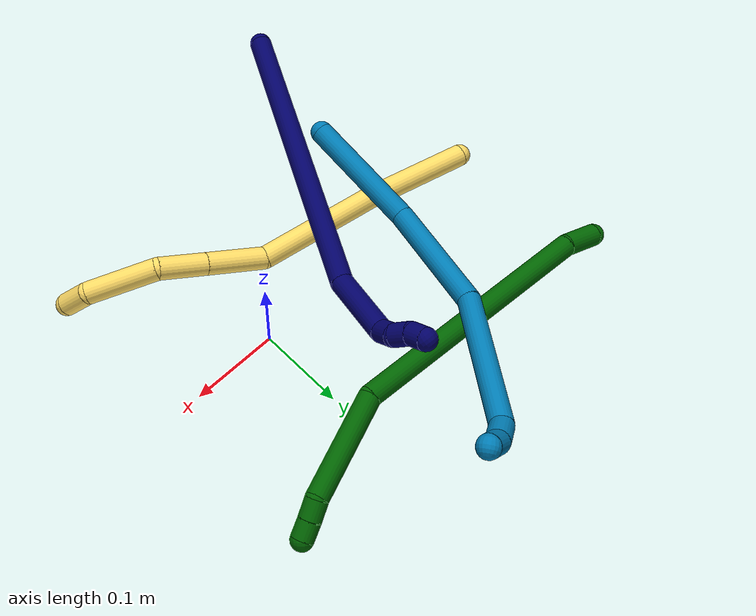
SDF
<sdf version="1.7">
 <world name="default">
  <model name="5">
   <static>0</static>
   <link name="5">
    <collision name="collision-cylinder-e_1_1_4">
     <pose>0.022314 -0.021101 0.054432 0.369815 0.365089 0.069029</pose>
     <geometry><cylinder><radius>0.0125</radius><length>0.124997</length></cylinder></geometry>
     <surface>
      <friction><ode><mu>1.16</mu><mu2>1.16</mu2><slip1>0</slip1><slip2>0</slip2></ode></friction>
      <contact><ode><kp>1e+06</kp><kd>1</kd><max_vel>0</max_vel><min_depth>0.001</min_depth></ode></contact>
     </surface>
    </collision>
    <visual name="visual-cylinder-e_1_1_4">
     <pose>0.022314 -0.021101 0.054432 0.369815 0.365089 0.069029</pose>
     <geometry><cylinder><radius>0.0125</radius><length>0.124997</length></cylinder></geometry>
     <material><ambient>1 0.858824 0.4 1</ambient></material>
    </visual>
    <collision name="collision-cylinder-e_2_4_5">
     <pose>0.073654 -0.057054 0.171053 0.234445 0.426164 0.050949</pose>
     <geometry><cylinder><radius>0.0125</radius><length>0.140435</length></cylinder></geometry>
     <surface>
      <friction><ode><mu>1.16</mu><mu2>1.16</mu2><slip1>0</slip1><slip2>0</slip2></ode></friction>
      <contact><ode><kp>1e+06</kp><kd>1</kd><max_vel>0</max_vel><min_depth>0.001</min_depth></ode></contact>
     </surface>
    </collision>
    <visual name="visual-cylinder-e_2_4_5">
     <pose>0.073654 -0.057054 0.171053 0.234445 0.426164 0.050949</pose>
     <geometry><cylinder><radius>0.0125</radius><length>0.140435</length></cylinder></geometry>
     <material><ambient>1 0.858824 0.4 1</ambient></material>
    </visual>
    <collision name="collision-cylinder-e_3_5_6">
     <pose>0.119127 -0.090342 0.255636 0.688724 0.515792 0.188642</pose>
     <geometry><cylinder><radius>0.0125</radius><length>0.06669</length></cylinder></geometry>
     <surface>
      <friction><ode><mu>1.16</mu><mu2>1.16</mu2><slip1>0</slip1><slip2>0</slip2></ode></friction>
      <contact><ode><kp>1e+06</kp><kd>1</kd><max_vel>0</max_vel><min_depth>0.001</min_depth></ode></contact>
     </surface>
    </collision>
    <visual name="visual-cylinder-e_3_5_6">
     <pose>0.119127 -0.090342 0.255636 0.688724 0.515792 0.188642</pose>
     <geometry><cylinder><radius>0.0125</radius><length>0.06669</length></cylinder></geometry>
     <material><ambient>1 0.858824 0.4 1</ambient></material>
    </visual>
    <collision name="collision-cylinder-e_4_6_7">
     <pose>0.148936 -0.123478 0.295875 0.68908 0.52403 0.191884</pose>
     <geometry><cylinder><radius>0.0125</radius><length>0.053407</length></cylinder></geometry>
     <surface>
      <friction><ode><mu>1.16</mu><mu2>1.16</mu2><slip1>0</slip1><slip2>0</slip2></ode></friction>
      <contact><ode><kp>1e+06</kp><kd>1</kd><max_vel>0</max_vel><min_depth>0.001</min_depth></ode></contact>
     </surface>
    </collision>
    <visual name="visual-cylinder-e_4_6_7">
     <pose>0.148936 -0.123478 0.295875 0.68908 0.52403 0.191884</pose>
     <geometry><cylinder><radius>0.0125</radius><length>0.053407</length></cylinder></geometry>
     <material><ambient>1 0.858824 0.4 1</ambient></material>
    </visual>
    <collision name="collision-cylinder-e_5_7_8">
     <pose>0.191706 -0.142436 0.340682 0.156635 0.82264 0.068438</pose>
     <geometry><cylinder><radius>0.0125</radius><length>0.080248</length></cylinder></geometry>
     <surface>
      <friction><ode><mu>1.16</mu><mu2>1.16</mu2><slip1>0</slip1><slip2>0</slip2></ode></friction>
      <contact><ode><kp>1e+06</kp><kd>1</kd><max_vel>0</max_vel><min_depth>0.001</min_depth></ode></contact>
     </surface>
    </collision>
    <visual name="visual-cylinder-e_5_7_8">
     <pose>0.191706 -0.142436 0.340682 0.156635 0.82264 0.068438</pose>
     <geometry><cylinder><radius>0.0125</radius><length>0.080248</length></cylinder></geometry>
     <material><ambient>1 0.858824 0.4 1</ambient></material>
    </visual>
    <collision name="collision-cylinder-e_6_8_2">
     <pose>0.235643 -0.141155 0.374788 -0.659491 1.01417 -0.37577</pose>
     <geometry><cylinder><radius>0.0125</radius><length>0.034224</length></cylinder></geometry>
     <surface>
      <friction><ode><mu>1.16</mu><mu2>1.16</mu2><slip1>0</slip1><slip2>0</slip2></ode></friction>
      <contact><ode><kp>1e+06</kp><kd>1</kd><max_vel>0</max_vel><min_depth>0.001</min_depth></ode></contact>
     </surface>
    </collision>
    <visual name="visual-cylinder-e_6_8_2">
     <pose>0.235643 -0.141155 0.374788 -0.659491 1.01417 -0.37577</pose>
     <geometry><cylinder><radius>0.0125</radius><length>0.034224</length></cylinder></geometry>
     <material><ambient>1 0.858824 0.4 1</ambient></material>
    </visual>
    <collision name="collision-sphere-2">
     <pose>0.250172 -0.135616 0.381933 0 -0 0</pose>
     <geometry><sphere><radius>0.0125</radius></sphere></geometry>
     <surface>
      <friction><ode><mu>1.16</mu><mu2>1.16</mu2><slip1>0</slip1><slip2>0</slip2></ode></friction>
      <contact><ode><kp>1e+06</kp><kd>1</kd><max_vel>0</max_vel><min_depth>0.001</min_depth></ode></contact>
     </surface>
    </collision>
    <visual name="visual-sphere-2">
     <pose>0.250172 -0.135616 0.381933 0 -0 0</pose>
     <geometry><sphere><radius>0.0125</radius></sphere></geometry>
     <material><ambient>1 0.858824 0.4 1</ambient></material>
    </visual>
    <collision name="collision-sphere-4">
     <pose>0.044628 -0.042201 0.108865 0 -0 0</pose>
     <geometry><sphere><radius>0.0125</radius></sphere></geometry>
     <surface>
      <friction><ode><mu>1.16</mu><mu2>1.16</mu2><slip1>0</slip1><slip2>0</slip2></ode></friction>
      <contact><ode><kp>1e+06</kp><kd>1</kd><max_vel>0</max_vel><min_depth>0.001</min_depth></ode></contact>
     </surface>
    </collision>
    <visual name="visual-sphere-4">
     <pose>0.044628 -0.042201 0.108865 0 -0 0</pose>
     <geometry><sphere><radius>0.0125</radius></sphere></geometry>
     <material><ambient>1 0.858824 0.4 1</ambient></material>
    </visual>
    <collision name="collision-sphere-1">
     <geometry><sphere><radius>0.0125</radius></sphere></geometry>
     <surface>
      <friction><ode><mu>1.16</mu><mu2>1.16</mu2><slip1>0</slip1><slip2>0</slip2></ode></friction>
      <contact><ode><kp>1e+06</kp><kd>1</kd><max_vel>0</max_vel><min_depth>0.001</min_depth></ode></contact>
     </surface>
    </collision>
    <visual name="visual-sphere-1">
     <geometry><sphere><radius>0.0125</radius></sphere></geometry>
     <material><ambient>1 0.858824 0.4 1</ambient></material>
    </visual>
    <collision name="collision-sphere-8">
     <pose>0.221114 -0.146694 0.367643 0 -0 0</pose>
     <geometry><sphere><radius>0.0125</radius></sphere></geometry>
     <surface>
      <friction><ode><mu>1.16</mu><mu2>1.16</mu2><slip1>0</slip1><slip2>0</slip2></ode></friction>
      <contact><ode><kp>1e+06</kp><kd>1</kd><max_vel>0</max_vel><min_depth>0.001</min_depth></ode></contact>
     </surface>
    </collision>
    <visual name="visual-sphere-8">
     <pose>0.221114 -0.146694 0.367643 0 -0 0</pose>
     <geometry><sphere><radius>0.0125</radius></sphere></geometry>
     <material><ambient>1 0.858824 0.4 1</ambient></material>
    </visual>
    <collision name="collision-sphere-5">
     <pose>0.102681 -0.071907 0.233241 0 -0 0</pose>
     <geometry><sphere><radius>0.0125</radius></sphere></geometry>
     <surface>
      <friction><ode><mu>1.16</mu><mu2>1.16</mu2><slip1>0</slip1><slip2>0</slip2></ode></friction>
      <contact><ode><kp>1e+06</kp><kd>1</kd><max_vel>0</max_vel><min_depth>0.001</min_depth></ode></contact>
     </surface>
    </collision>
    <visual name="visual-sphere-5">
     <pose>0.102681 -0.071907 0.233241 0 -0 0</pose>
     <geometry><sphere><radius>0.0125</radius></sphere></geometry>
     <material><ambient>1 0.858824 0.4 1</ambient></material>
    </visual>
    <collision name="collision-sphere-6">
     <pose>0.135574 -0.108778 0.278031 0 -0 0</pose>
     <geometry><sphere><radius>0.0125</radius></sphere></geometry>
     <surface>
      <friction><ode><mu>1.16</mu><mu2>1.16</mu2><slip1>0</slip1><slip2>0</slip2></ode></friction>
      <contact><ode><kp>1e+06</kp><kd>1</kd><max_vel>0</max_vel><min_depth>0.001</min_depth></ode></contact>
     </surface>
    </collision>
    <visual name="visual-sphere-6">
     <pose>0.135574 -0.108778 0.278031 0 -0 0</pose>
     <geometry><sphere><radius>0.0125</radius></sphere></geometry>
     <material><ambient>1 0.858824 0.4 1</ambient></material>
    </visual>
    <collision name="collision-sphere-7">
     <pose>0.162297 -0.138178 0.31372 0 -0 0</pose>
     <geometry><sphere><radius>0.0125</radius></sphere></geometry>
     <surface>
      <friction><ode><mu>1.16</mu><mu2>1.16</mu2><slip1>0</slip1><slip2>0</slip2></ode></friction>
      <contact><ode><kp>1e+06</kp><kd>1</kd><max_vel>0</max_vel><min_depth>0.001</min_depth></ode></contact>
     </surface>
    </collision>
    <visual name="visual-sphere-7">
     <pose>0.162297 -0.138178 0.31372 0 -0 0</pose>
     <geometry><sphere><radius>0.0125</radius></sphere></geometry>
     <material><ambient>1 0.858824 0.4 1</ambient></material>
    </visual>
    <inertial>
     <pose>0.10496 -0.079061 0.207683 0 -0 0</pose>
     <mass>0.5</mass>
     <inertia>
      <ixx>0.00049</ixx>
      <ixy>0</ixy>
      <ixz>0</ixz>
      <iyy>0.000492</iyy>
      <iyz>0</iyz>
      <izz>-5.3e-05</izz>
     </inertia>
    </inertial>
   </link>
   <pose>-0.311629 -0.013539 0.02881 -1.6405 0.4193 -1.29907</pose>
  </model>
  <model name="6">
   <static>0</static>
   <link name="6">
    <collision name="collision-cylinder-e_1_1_4">
     <pose>0.003434 -0.006276 -0.019703 2.83321 0.16456 0.975624</pose>
     <geometry><cylinder><radius>0.0125</radius><length>0.041924</length></cylinder></geometry>
     <surface>
      <friction><ode><mu>1.16</mu><mu2>1.16</mu2><slip1>0</slip1><slip2>0</slip2></ode></friction>
      <contact><ode><kp>1e+06</kp><kd>1</kd><max_vel>0</max_vel><min_depth>0.001</min_depth></ode></contact>
     </surface>
    </collision>
    <visual name="visual-cylinder-e_1_1_4">
     <pose>0.003434 -0.006276 -0.019703 2.83321 0.16456 0.975624</pose>
     <geometry><cylinder><radius>0.0125</radius><length>0.041924</length></cylinder></geometry>
     <material><ambient>0 0.392157 0.003922 1</ambient></material>
    </visual>
    <collision name="collision-cylinder-e_2_4_5">
     <pose>0.068405 -0.045663 -0.170341 2.89391 0.427535 2.10032</pose>
     <geometry><cylinder><radius>0.0125</radius><length>0.29683</length></cylinder></geometry>
     <surface>
      <friction><ode><mu>1.16</mu><mu2>1.16</mu2><slip1>0</slip1><slip2>0</slip2></ode></friction>
      <contact><ode><kp>1e+06</kp><kd>1</kd><max_vel>0</max_vel><min_depth>0.001</min_depth></ode></contact>
     </surface>
    </collision>
    <visual name="visual-cylinder-e_2_4_5">
     <pose>0.068405 -0.045663 -0.170341 2.89391 0.427535 2.10032</pose>
     <geometry><cylinder><radius>0.0125</radius><length>0.29683</length></cylinder></geometry>
     <material><ambient>0 0.392157 0.003922 1</ambient></material>
    </visual>
    <collision name="collision-cylinder-e_3_5_6">
     <pose>0.17348 -0.094524 -0.33811 2.7375 0.826956 2.26803</pose>
     <geometry><cylinder><radius>0.0125</radius><length>0.118328</length></cylinder></geometry>
     <surface>
      <friction><ode><mu>1.16</mu><mu2>1.16</mu2><slip1>0</slip1><slip2>0</slip2></ode></friction>
      <contact><ode><kp>1e+06</kp><kd>1</kd><max_vel>0</max_vel><min_depth>0.001</min_depth></ode></contact>
     </surface>
    </collision>
    <visual name="visual-cylinder-e_3_5_6">
     <pose>0.17348 -0.094524 -0.33811 2.7375 0.826956 2.26803</pose>
     <geometry><cylinder><radius>0.0125</radius><length>0.118328</length></cylinder></geometry>
     <material><ambient>0 0.392157 0.003922 1</ambient></material>
    </visual>
    <collision name="collision-cylinder-e_4_6_7">
     <pose>0.227031 -0.110021 -0.379717 -3.08834 1.12553 -3.0572</pose>
     <geometry><cylinder><radius>0.0125</radius><length>0.022193</length></cylinder></geometry>
     <surface>
      <friction><ode><mu>1.16</mu><mu2>1.16</mu2><slip1>0</slip1><slip2>0</slip2></ode></friction>
      <contact><ode><kp>1e+06</kp><kd>1</kd><max_vel>0</max_vel><min_depth>0.001</min_depth></ode></contact>
     </surface>
    </collision>
    <visual name="visual-cylinder-e_4_6_7">
     <pose>0.227031 -0.110021 -0.379717 -3.08834 1.12553 -3.0572</pose>
     <geometry><cylinder><radius>0.0125</radius><length>0.022193</length></cylinder></geometry>
     <material><ambient>0 0.392157 0.003922 1</ambient></material>
    </visual>
    <collision name="collision-cylinder-e_5_7_2">
     <pose>0.246215 -0.109281 -0.389293 -3.04079 1.08622 -2.97486</pose>
     <geometry><cylinder><radius>0.0125</radius><length>0.020725</length></cylinder></geometry>
     <surface>
      <friction><ode><mu>1.16</mu><mu2>1.16</mu2><slip1>0</slip1><slip2>0</slip2></ode></friction>
      <contact><ode><kp>1e+06</kp><kd>1</kd><max_vel>0</max_vel><min_depth>0.001</min_depth></ode></contact>
     </surface>
    </collision>
    <visual name="visual-cylinder-e_5_7_2">
     <pose>0.246215 -0.109281 -0.389293 -3.04079 1.08622 -2.97486</pose>
     <geometry><cylinder><radius>0.0125</radius><length>0.020725</length></cylinder></geometry>
     <material><ambient>0 0.392157 0.003922 1</ambient></material>
    </visual>
    <collision name="collision-sphere-2">
     <pose>0.255385 -0.108795 -0.394095 0 -0 0</pose>
     <geometry><sphere><radius>0.0125</radius></sphere></geometry>
     <surface>
      <friction><ode><mu>1.16</mu><mu2>1.16</mu2><slip1>0</slip1><slip2>0</slip2></ode></friction>
      <contact><ode><kp>1e+06</kp><kd>1</kd><max_vel>0</max_vel><min_depth>0.001</min_depth></ode></contact>
     </surface>
    </collision>
    <visual name="visual-sphere-2">
     <pose>0.255385 -0.108795 -0.394095 0 -0 0</pose>
     <geometry><sphere><radius>0.0125</radius></sphere></geometry>
     <material><ambient>0 0.392157 0.003922 1</ambient></material>
    </visual>
    <collision name="collision-sphere-7">
     <pose>0.237046 -0.109767 -0.38449 0 -0 0</pose>
     <geometry><sphere><radius>0.0125</radius></sphere></geometry>
     <surface>
      <friction><ode><mu>1.16</mu><mu2>1.16</mu2><slip1>0</slip1><slip2>0</slip2></ode></friction>
      <contact><ode><kp>1e+06</kp><kd>1</kd><max_vel>0</max_vel><min_depth>0.001</min_depth></ode></contact>
     </surface>
    </collision>
    <visual name="visual-sphere-7">
     <pose>0.237046 -0.109767 -0.38449 0 -0 0</pose>
     <geometry><sphere><radius>0.0125</radius></sphere></geometry>
     <material><ambient>0 0.392157 0.003922 1</ambient></material>
    </visual>
    <collision name="collision-sphere-6">
     <pose>0.217017 -0.110276 -0.374945 0 -0 0</pose>
     <geometry><sphere><radius>0.0125</radius></sphere></geometry>
     <surface>
      <friction><ode><mu>1.16</mu><mu2>1.16</mu2><slip1>0</slip1><slip2>0</slip2></ode></friction>
      <contact><ode><kp>1e+06</kp><kd>1</kd><max_vel>0</max_vel><min_depth>0.001</min_depth></ode></contact>
     </surface>
    </collision>
    <visual name="visual-sphere-6">
     <pose>0.217017 -0.110276 -0.374945 0 -0 0</pose>
     <geometry><sphere><radius>0.0125</radius></sphere></geometry>
     <material><ambient>0 0.392157 0.003922 1</ambient></material>
    </visual>
    <collision name="collision-sphere-5">
     <pose>0.129942 -0.078773 -0.301276 0 -0 0</pose>
     <geometry><sphere><radius>0.0125</radius></sphere></geometry>
     <surface>
      <friction><ode><mu>1.16</mu><mu2>1.16</mu2><slip1>0</slip1><slip2>0</slip2></ode></friction>
      <contact><ode><kp>1e+06</kp><kd>1</kd><max_vel>0</max_vel><min_depth>0.001</min_depth></ode></contact>
     </surface>
    </collision>
    <visual name="visual-sphere-5">
     <pose>0.129942 -0.078773 -0.301276 0 -0 0</pose>
     <geometry><sphere><radius>0.0125</radius></sphere></geometry>
     <material><ambient>0 0.392157 0.003922 1</ambient></material>
    </visual>
    <collision name="collision-sphere-1">
     <geometry><sphere><radius>0.0125</radius></sphere></geometry>
     <surface>
      <friction><ode><mu>1.16</mu><mu2>1.16</mu2><slip1>0</slip1><slip2>0</slip2></ode></friction>
      <contact><ode><kp>1e+06</kp><kd>1</kd><max_vel>0</max_vel><min_depth>0.001</min_depth></ode></contact>
     </surface>
    </collision>
    <visual name="visual-sphere-1">
     <geometry><sphere><radius>0.0125</radius></sphere></geometry>
     <material><ambient>0 0.392157 0.003922 1</ambient></material>
    </visual>
    <collision name="collision-sphere-4">
     <pose>0.006868 -0.012553 -0.039406 0 -0 0</pose>
     <geometry><sphere><radius>0.0125</radius></sphere></geometry>
     <surface>
      <friction><ode><mu>1.16</mu><mu2>1.16</mu2><slip1>0</slip1><slip2>0</slip2></ode></friction>
      <contact><ode><kp>1e+06</kp><kd>1</kd><max_vel>0</max_vel><min_depth>0.001</min_depth></ode></contact>
     </surface>
    </collision>
    <visual name="visual-sphere-4">
     <pose>0.006868 -0.012553 -0.039406 0 -0 0</pose>
     <geometry><sphere><radius>0.0125</radius></sphere></geometry>
     <material><ambient>0 0.392157 0.003922 1</ambient></material>
    </visual>
    <inertial>
     <pose>0.102235 -0.059417 -0.215783 0 -0 0</pose>
     <mass>0.5</mass>
     <inertia>
      <ixx>0.000755</ixx>
      <ixy>0</ixy>
      <ixz>0</ixz>
      <iyy>0.003173</iyy>
      <iyz>0</iyz>
      <izz>-0.00052</izz>
     </inertia>
    </inertial>
   </link>
   <pose>-0.349409 0.159865 0.011494 -1.75501 0.611703 0.934999</pose>
  </model>
  <model name="7">
   <static>0</static>
   <link name="7">
    <collision name="collision-cylinder-e_1_1_4">
     <pose>0.093923 0.047242 -0.142399 -2.82126 0.559334 -2.1168</pose>
     <geometry><cylinder><radius>0.0125</radius><length>0.35401</length></cylinder></geometry>
     <surface>
      <friction><ode><mu>1.16</mu><mu2>1.16</mu2><slip1>0</slip1><slip2>0</slip2></ode></friction>
      <contact><ode><kp>1e+06</kp><kd>1</kd><max_vel>0</max_vel><min_depth>0.001</min_depth></ode></contact>
     </surface>
    </collision>
    <visual name="visual-cylinder-e_1_1_4">
     <pose>0.093923 0.047242 -0.142399 -2.82126 0.559334 -2.1168</pose>
     <geometry><cylinder><radius>0.0125</radius><length>0.35401</length></cylinder></geometry>
     <material><ambient>0.003922 0 0.403922 1</ambient></material>
    </visual>
    <collision name="collision-cylinder-e_2_4_5">
     <pose>0.202519 0.115822 -0.315698 -2.53723 0.372506 -1.08743</pose>
     <geometry><cylinder><radius>0.0125</radius><length>0.080634</length></cylinder></geometry>
     <surface>
      <friction><ode><mu>1.16</mu><mu2>1.16</mu2><slip1>0</slip1><slip2>0</slip2></ode></friction>
      <contact><ode><kp>1e+06</kp><kd>1</kd><max_vel>0</max_vel><min_depth>0.001</min_depth></ode></contact>
     </surface>
    </collision>
    <visual name="visual-cylinder-e_2_4_5">
     <pose>0.202519 0.115822 -0.315698 -2.53723 0.372506 -1.08743</pose>
     <geometry><cylinder><radius>0.0125</radius><length>0.080634</length></cylinder></geometry>
     <material><ambient>0.003922 0 0.403922 1</ambient></material>
    </visual>
    <collision name="collision-cylinder-e_3_5_6">
     <pose>0.220681 0.147362 -0.351242 -1.99801 0.30181 -0.464096</pose>
     <geometry><cylinder><radius>0.0125</radius><length>0.023478</length></cylinder></geometry>
     <surface>
      <friction><ode><mu>1.16</mu><mu2>1.16</mu2><slip1>0</slip1><slip2>0</slip2></ode></friction>
      <contact><ode><kp>1e+06</kp><kd>1</kd><max_vel>0</max_vel><min_depth>0.001</min_depth></ode></contact>
     </surface>
    </collision>
    <visual name="visual-cylinder-e_3_5_6">
     <pose>0.220681 0.147362 -0.351242 -1.99801 0.30181 -0.464096</pose>
     <geometry><cylinder><radius>0.0125</radius><length>0.023478</length></cylinder></geometry>
     <material><ambient>0.003922 0 0.403922 1</ambient></material>
    </visual>
    <collision name="collision-cylinder-e_4_6_7">
     <pose>0.222669 0.1676 -0.359574 -1.9229 -0.139482 0.199506</pose>
     <geometry><cylinder><radius>0.0125</radius><length>0.021598</length></cylinder></geometry>
     <surface>
      <friction><ode><mu>1.16</mu><mu2>1.16</mu2><slip1>0</slip1><slip2>0</slip2></ode></friction>
      <contact><ode><kp>1e+06</kp><kd>1</kd><max_vel>0</max_vel><min_depth>0.001</min_depth></ode></contact>
     </surface>
    </collision>
    <visual name="visual-cylinder-e_4_6_7">
     <pose>0.222669 0.1676 -0.359574 -1.9229 -0.139482 0.199506</pose>
     <geometry><cylinder><radius>0.0125</radius><length>0.021598</length></cylinder></geometry>
     <material><ambient>0.003922 0 0.403922 1</ambient></material>
    </visual>
    <collision name="collision-cylinder-e_5_7_2">
     <pose>0.222481 0.185801 -0.369134 -2.19441 0.129803 -0.252287</pose>
     <geometry><cylinder><radius>0.0125</radius><length>0.020281</length></cylinder></geometry>
     <surface>
      <friction><ode><mu>1.16</mu><mu2>1.16</mu2><slip1>0</slip1><slip2>0</slip2></ode></friction>
      <contact><ode><kp>1e+06</kp><kd>1</kd><max_vel>0</max_vel><min_depth>0.001</min_depth></ode></contact>
     </surface>
    </collision>
    <visual name="visual-cylinder-e_5_7_2">
     <pose>0.222481 0.185801 -0.369134 -2.19441 0.129803 -0.252287</pose>
     <geometry><cylinder><radius>0.0125</radius><length>0.020281</length></cylinder></geometry>
     <material><ambient>0.003922 0 0.403922 1</ambient></material>
    </visual>
    <collision name="collision-sphere-2">
     <pose>0.223793 0.193964 -0.375006 0 -0 0</pose>
     <geometry><sphere><radius>0.0125</radius></sphere></geometry>
     <surface>
      <friction><ode><mu>1.16</mu><mu2>1.16</mu2><slip1>0</slip1><slip2>0</slip2></ode></friction>
      <contact><ode><kp>1e+06</kp><kd>1</kd><max_vel>0</max_vel><min_depth>0.001</min_depth></ode></contact>
     </surface>
    </collision>
    <visual name="visual-sphere-2">
     <pose>0.223793 0.193964 -0.375006 0 -0 0</pose>
     <geometry><sphere><radius>0.0125</radius></sphere></geometry>
     <material><ambient>0.003922 0 0.403922 1</ambient></material>
    </visual>
    <collision name="collision-sphere-7">
     <pose>0.221168 0.177638 -0.363262 0 -0 0</pose>
     <geometry><sphere><radius>0.0125</radius></sphere></geometry>
     <surface>
      <friction><ode><mu>1.16</mu><mu2>1.16</mu2><slip1>0</slip1><slip2>0</slip2></ode></friction>
      <contact><ode><kp>1e+06</kp><kd>1</kd><max_vel>0</max_vel><min_depth>0.001</min_depth></ode></contact>
     </surface>
    </collision>
    <visual name="visual-sphere-7">
     <pose>0.221168 0.177638 -0.363262 0 -0 0</pose>
     <geometry><sphere><radius>0.0125</radius></sphere></geometry>
     <material><ambient>0.003922 0 0.403922 1</ambient></material>
    </visual>
    <collision name="collision-sphere-6">
     <pose>0.224171 0.157563 -0.355886 0 -0 0</pose>
     <geometry><sphere><radius>0.0125</radius></sphere></geometry>
     <surface>
      <friction><ode><mu>1.16</mu><mu2>1.16</mu2><slip1>0</slip1><slip2>0</slip2></ode></friction>
      <contact><ode><kp>1e+06</kp><kd>1</kd><max_vel>0</max_vel><min_depth>0.001</min_depth></ode></contact>
     </surface>
    </collision>
    <visual name="visual-sphere-6">
     <pose>0.224171 0.157563 -0.355886 0 -0 0</pose>
     <geometry><sphere><radius>0.0125</radius></sphere></geometry>
     <material><ambient>0.003922 0 0.403922 1</ambient></material>
    </visual>
    <collision name="collision-sphere-5">
     <pose>0.217192 0.137161 -0.346598 0 -0 0</pose>
     <geometry><sphere><radius>0.0125</radius></sphere></geometry>
     <surface>
      <friction><ode><mu>1.16</mu><mu2>1.16</mu2><slip1>0</slip1><slip2>0</slip2></ode></friction>
      <contact><ode><kp>1e+06</kp><kd>1</kd><max_vel>0</max_vel><min_depth>0.001</min_depth></ode></contact>
     </surface>
    </collision>
    <visual name="visual-sphere-5">
     <pose>0.217192 0.137161 -0.346598 0 -0 0</pose>
     <geometry><sphere><radius>0.0125</radius></sphere></geometry>
     <material><ambient>0.003922 0 0.403922 1</ambient></material>
    </visual>
    <collision name="collision-sphere-1">
     <geometry><sphere><radius>0.0125</radius></sphere></geometry>
     <surface>
      <friction><ode><mu>1.16</mu><mu2>1.16</mu2><slip1>0</slip1><slip2>0</slip2></ode></friction>
      <contact><ode><kp>1e+06</kp><kd>1</kd><max_vel>0</max_vel><min_depth>0.001</min_depth></ode></contact>
     </surface>
    </collision>
    <visual name="visual-sphere-1">
     <geometry><sphere><radius>0.0125</radius></sphere></geometry>
     <material><ambient>0.003922 0 0.403922 1</ambient></material>
    </visual>
    <collision name="collision-sphere-4">
     <pose>0.187845 0.094484 -0.284798 0 -0 0</pose>
     <geometry><sphere><radius>0.0125</radius></sphere></geometry>
     <surface>
      <friction><ode><mu>1.16</mu><mu2>1.16</mu2><slip1>0</slip1><slip2>0</slip2></ode></friction>
      <contact><ode><kp>1e+06</kp><kd>1</kd><max_vel>0</max_vel><min_depth>0.001</min_depth></ode></contact>
     </surface>
    </collision>
    <visual name="visual-sphere-4">
     <pose>0.187845 0.094484 -0.284798 0 -0 0</pose>
     <geometry><sphere><radius>0.0125</radius></sphere></geometry>
     <material><ambient>0.003922 0 0.403922 1</ambient></material>
    </visual>
    <inertial>
     <pose>0.128164 0.073822 -0.198731 0 -0 0</pose>
     <mass>0.5</mass>
     <inertia>
      <ixx>-0.004318</ixx>
      <ixy>0</ixy>
      <ixz>0</ixz>
      <iyy>-0.000365</iyy>
      <iyz>0</iyz>
      <izz>-0.003036</izz>
     </inertia>
    </inertial>
   </link>
   <pose>-0.242914 -0.27862 0.058413 1.10199 -0.299922 0.085955</pose>
  </model>
  <model name="9">
   <static>0</static>
   <link name="9">
    <collision name="collision-cylinder-e_1_1_4">
     <pose>0.036319 0.040161 0.042809 -0.753496 0.554088 -0.224068</pose>
     <geometry><cylinder><radius>0.0125</radius><length>0.138051</length></cylinder></geometry>
     <surface>
      <friction><ode><mu>1.16</mu><mu2>1.16</mu2><slip1>0</slip1><slip2>0</slip2></ode></friction>
      <contact><ode><kp>1e+06</kp><kd>1</kd><max_vel>0</max_vel><min_depth>0.001</min_depth></ode></contact>
     </surface>
    </collision>
    <visual name="visual-cylinder-e_1_1_4">
     <pose>0.036319 0.040161 0.042809 -0.753496 0.554088 -0.224068</pose>
     <geometry><cylinder><radius>0.0125</radius><length>0.138051</length></cylinder></geometry>
     <material><ambient>0 0.490196 0.709804 1</ambient></material>
    </visual>
    <collision name="collision-cylinder-e_2_4_5">
     <pose>0.087986 0.127909 0.132241 -0.795629 0.226422 -0.095483</pose>
     <geometry><cylinder><radius>0.0125</radius><length>0.136731</length></cylinder></geometry>
     <surface>
      <friction><ode><mu>1.16</mu><mu2>1.16</mu2><slip1>0</slip1><slip2>0</slip2></ode></friction>
      <contact><ode><kp>1e+06</kp><kd>1</kd><max_vel>0</max_vel><min_depth>0.001</min_depth></ode></contact>
     </surface>
    </collision>
    <visual name="visual-cylinder-e_2_4_5">
     <pose>0.087986 0.127909 0.132241 -0.795629 0.226422 -0.095483</pose>
     <geometry><cylinder><radius>0.0125</radius><length>0.136731</length></cylinder></geometry>
     <material><ambient>0 0.490196 0.709804 1</ambient></material>
    </visual>
    <collision name="collision-cylinder-e_3_5_6">
     <pose>0.093203 0.223623 0.246681 -0.617177 -0.121225 0.038686</pose>
     <geometry><cylinder><radius>0.0125</radius><length>0.167546</length></cylinder></geometry>
     <surface>
      <friction><ode><mu>1.16</mu><mu2>1.16</mu2><slip1>0</slip1><slip2>0</slip2></ode></friction>
      <contact><ode><kp>1e+06</kp><kd>1</kd><max_vel>0</max_vel><min_depth>0.001</min_depth></ode></contact>
     </surface>
    </collision>
    <visual name="visual-cylinder-e_3_5_6">
     <pose>0.093203 0.223623 0.246681 -0.617177 -0.121225 0.038686</pose>
     <geometry><cylinder><radius>0.0125</radius><length>0.167546</length></cylinder></geometry>
     <material><ambient>0 0.490196 0.709804 1</ambient></material>
    </visual>
    <collision name="collision-cylinder-e_4_6_7">
     <pose>0.074205 0.279711 0.324119 -0.691252 -0.617427 0.228664</pose>
     <geometry><cylinder><radius>0.0125</radius><length>0.030631</length></cylinder></geometry>
     <surface>
      <friction><ode><mu>1.16</mu><mu2>1.16</mu2><slip1>0</slip1><slip2>0</slip2></ode></friction>
      <contact><ode><kp>1e+06</kp><kd>1</kd><max_vel>0</max_vel><min_depth>0.001</min_depth></ode></contact>
     </surface>
    </collision>
    <visual name="visual-cylinder-e_4_6_7">
     <pose>0.074205 0.279711 0.324119 -0.691252 -0.617427 0.228664</pose>
     <geometry><cylinder><radius>0.0125</radius><length>0.030631</length></cylinder></geometry>
     <material><ambient>0 0.490196 0.709804 1</ambient></material>
    </visual>
    <collision name="collision-cylinder-e_5_7_2">
     <pose>0.054246 0.293941 0.338262 -0.945911 -0.962203 0.522028</pose>
     <geometry><cylinder><radius>0.0125</radius><length>0.02704</length></cylinder></geometry>
     <surface>
      <friction><ode><mu>1.16</mu><mu2>1.16</mu2><slip1>0</slip1><slip2>0</slip2></ode></friction>
      <contact><ode><kp>1e+06</kp><kd>1</kd><max_vel>0</max_vel><min_depth>0.001</min_depth></ode></contact>
     </surface>
    </collision>
    <visual name="visual-cylinder-e_5_7_2">
     <pose>0.054246 0.293941 0.338262 -0.945911 -0.962203 0.522028</pose>
     <geometry><cylinder><radius>0.0125</radius><length>0.02704</length></cylinder></geometry>
     <material><ambient>0 0.490196 0.709804 1</ambient></material>
    </visual>
    <collision name="collision-sphere-2">
     <pose>0.043153 0.30021 0.342784 0 -0 0</pose>
     <geometry><sphere><radius>0.0125</radius></sphere></geometry>
     <surface>
      <friction><ode><mu>1.16</mu><mu2>1.16</mu2><slip1>0</slip1><slip2>0</slip2></ode></friction>
      <contact><ode><kp>1e+06</kp><kd>1</kd><max_vel>0</max_vel><min_depth>0.001</min_depth></ode></contact>
     </surface>
    </collision>
    <visual name="visual-sphere-2">
     <pose>0.043153 0.30021 0.342784 0 -0 0</pose>
     <geometry><sphere><radius>0.0125</radius></sphere></geometry>
     <material><ambient>0 0.490196 0.709804 1</ambient></material>
    </visual>
    <collision name="collision-sphere-7">
     <pose>0.065338 0.287672 0.33374 0 -0 0</pose>
     <geometry><sphere><radius>0.0125</radius></sphere></geometry>
     <surface>
      <friction><ode><mu>1.16</mu><mu2>1.16</mu2><slip1>0</slip1><slip2>0</slip2></ode></friction>
      <contact><ode><kp>1e+06</kp><kd>1</kd><max_vel>0</max_vel><min_depth>0.001</min_depth></ode></contact>
     </surface>
    </collision>
    <visual name="visual-sphere-7">
     <pose>0.065338 0.287672 0.33374 0 -0 0</pose>
     <geometry><sphere><radius>0.0125</radius></sphere></geometry>
     <material><ambient>0 0.490196 0.709804 1</ambient></material>
    </visual>
    <collision name="collision-sphere-6">
     <pose>0.083072 0.27175 0.314498 0 -0 0</pose>
     <geometry><sphere><radius>0.0125</radius></sphere></geometry>
     <surface>
      <friction><ode><mu>1.16</mu><mu2>1.16</mu2><slip1>0</slip1><slip2>0</slip2></ode></friction>
      <contact><ode><kp>1e+06</kp><kd>1</kd><max_vel>0</max_vel><min_depth>0.001</min_depth></ode></contact>
     </surface>
    </collision>
    <visual name="visual-sphere-6">
     <pose>0.083072 0.27175 0.314498 0 -0 0</pose>
     <geometry><sphere><radius>0.0125</radius></sphere></geometry>
     <material><ambient>0 0.490196 0.709804 1</ambient></material>
    </visual>
    <collision name="collision-sphere-5">
     <pose>0.103333 0.175496 0.178864 0 -0 0</pose>
     <geometry><sphere><radius>0.0125</radius></sphere></geometry>
     <surface>
      <friction><ode><mu>1.16</mu><mu2>1.16</mu2><slip1>0</slip1><slip2>0</slip2></ode></friction>
      <contact><ode><kp>1e+06</kp><kd>1</kd><max_vel>0</max_vel><min_depth>0.001</min_depth></ode></contact>
     </surface>
    </collision>
    <visual name="visual-sphere-5">
     <pose>0.103333 0.175496 0.178864 0 -0 0</pose>
     <geometry><sphere><radius>0.0125</radius></sphere></geometry>
     <material><ambient>0 0.490196 0.709804 1</ambient></material>
    </visual>
    <collision name="collision-sphere-1">
     <geometry><sphere><radius>0.0125</radius></sphere></geometry>
     <surface>
      <friction><ode><mu>1.16</mu><mu2>1.16</mu2><slip1>0</slip1><slip2>0</slip2></ode></friction>
      <contact><ode><kp>1e+06</kp><kd>1</kd><max_vel>0</max_vel><min_depth>0.001</min_depth></ode></contact>
     </surface>
    </collision>
    <visual name="visual-sphere-1">
     <geometry><sphere><radius>0.0125</radius></sphere></geometry>
     <material><ambient>0 0.490196 0.709804 1</ambient></material>
    </visual>
    <collision name="collision-sphere-4">
     <pose>0.072638 0.080322 0.085617 0 -0 0</pose>
     <geometry><sphere><radius>0.0125</radius></sphere></geometry>
     <surface>
      <friction><ode><mu>1.16</mu><mu2>1.16</mu2><slip1>0</slip1><slip2>0</slip2></ode></friction>
      <contact><ode><kp>1e+06</kp><kd>1</kd><max_vel>0</max_vel><min_depth>0.001</min_depth></ode></contact>
     </surface>
    </collision>
    <visual name="visual-sphere-4">
     <pose>0.072638 0.080322 0.085617 0 -0 0</pose>
     <geometry><sphere><radius>0.0125</radius></sphere></geometry>
     <material><ambient>0 0.490196 0.709804 1</ambient></material>
    </visual>
    <inertial>
     <pose>0.0728 0.154033 0.168793 0 -0 0</pose>
     <mass>0.5</mass>
     <inertia>
      <ixx>0.000755</ixx>
      <ixy>0</ixy>
      <ixz>0</ixz>
      <iyy>0.000642</iyy>
      <iyz>0</iyz>
      <izz>-0.000603</izz>
     </inertia>
    </inertial>
   </link>
   <pose>-0.19561 -0.122424 0.074999 1.94274 0.698656 2.42271</pose>
  </model>
 </world>
</sdf>
